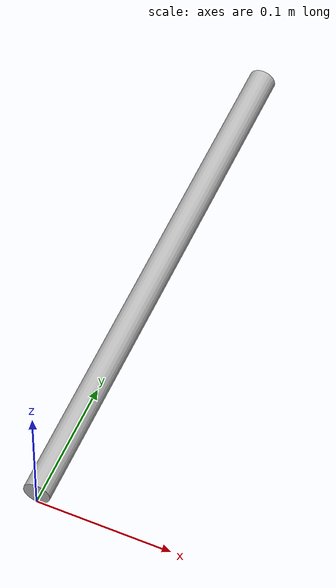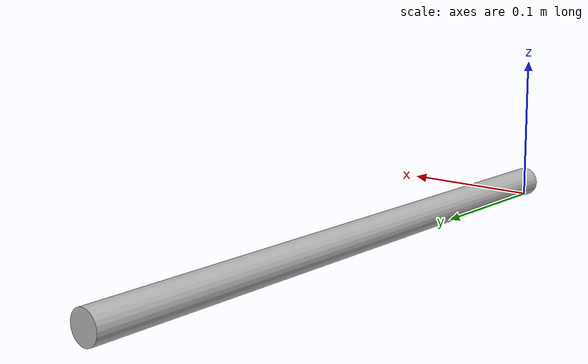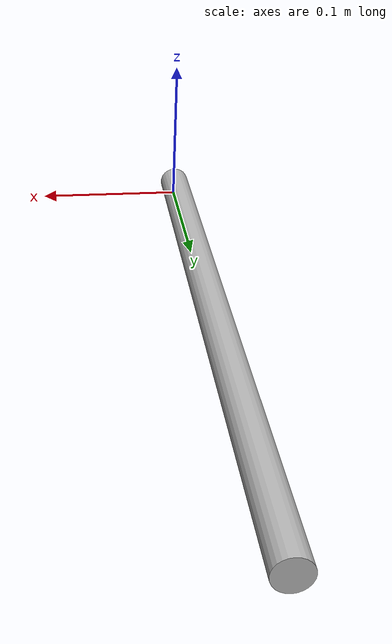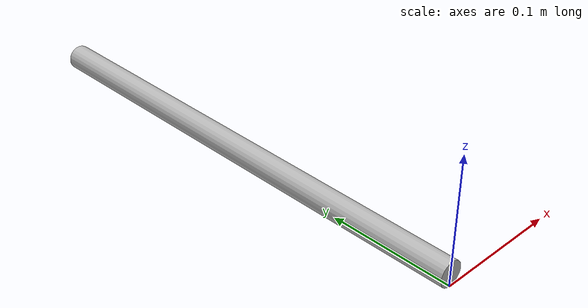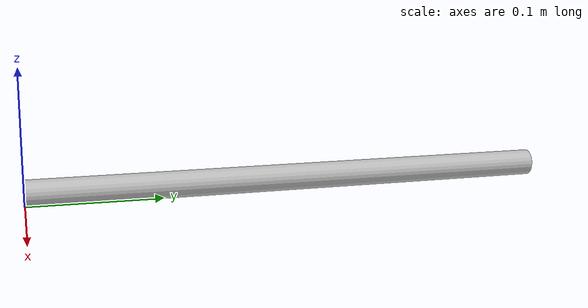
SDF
<?xml version='1.0'?>
<sdf version='1.6'>
  <model name="compliant_beam_horizontal.sdf">

    <link name='branch'>

      <pose frame=''>0 0 0.01 -1.570796 0 0</pose>
      <collision name='collision'>
        <pose frame=''>0 0 0.2 0 0 0</pose>
        <geometry>
          <cylinder>
            <length>0.4</length>
            <radius>0.01</radius>
          </cylinder>
        </geometry>
      </collision>

      <visual name='visual'>
        <pose frame=''>0 0 0.2 0 0 0</pose>
        <geometry>
          <cylinder>
            <length>0.4</length>
            <radius>0.01</radius>
          </cylinder>
        </geometry>
      </visual>

      <inertial>
        <pose frame=''>0 0 0.2 0 0 0</pose>
        <mass>0.1</mass>
        <inertia>
          <ixx>4e-3</ixx>
          <ixy>0</ixy>
          <ixz>0</ixz>
          <iyy>4e-3</iyy>
          <iyz>0</iyz>
          <izz>2e-5</izz>
        </inertia>
      </inertial>
    </link>

    <joint name='base_to_branch' type='universal'>
      <parent>world</parent>
      <child>branch</child>
      <pose>0 0 0 0 0 0</pose>
      <axis>
        <xyz>0 1 0</xyz>
        <dynamics>
          <damping>1.0</damping>
          <spring_reference>0</spring_reference>
          <spring_stiffness>10.0</spring_stiffness>
        </dynamics>
      </axis>
      <axis2>
        <xyz>1 0 0</xyz>
        <dynamics>
          <damping>1.0</damping>
          <spring_reference>0</spring_reference>
          <spring_stiffness>10.0</spring_stiffness>
        </dynamics>
      </axis2>
    </joint>
  </model>
</sdf>
